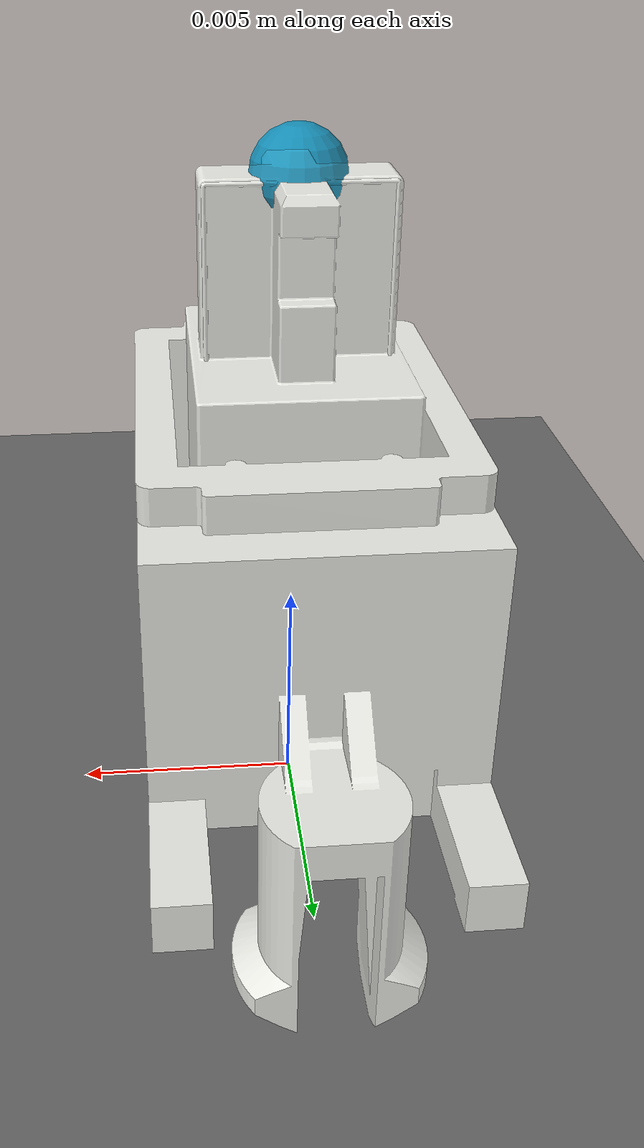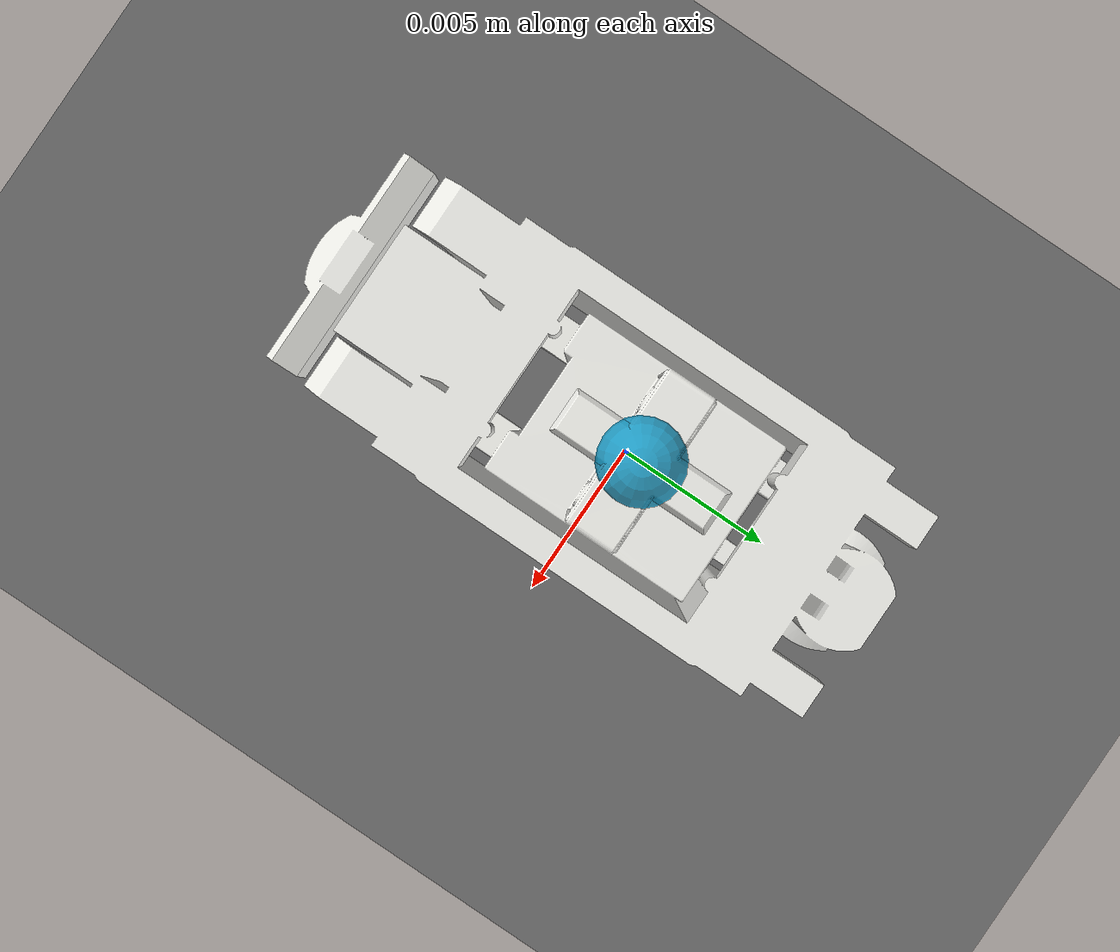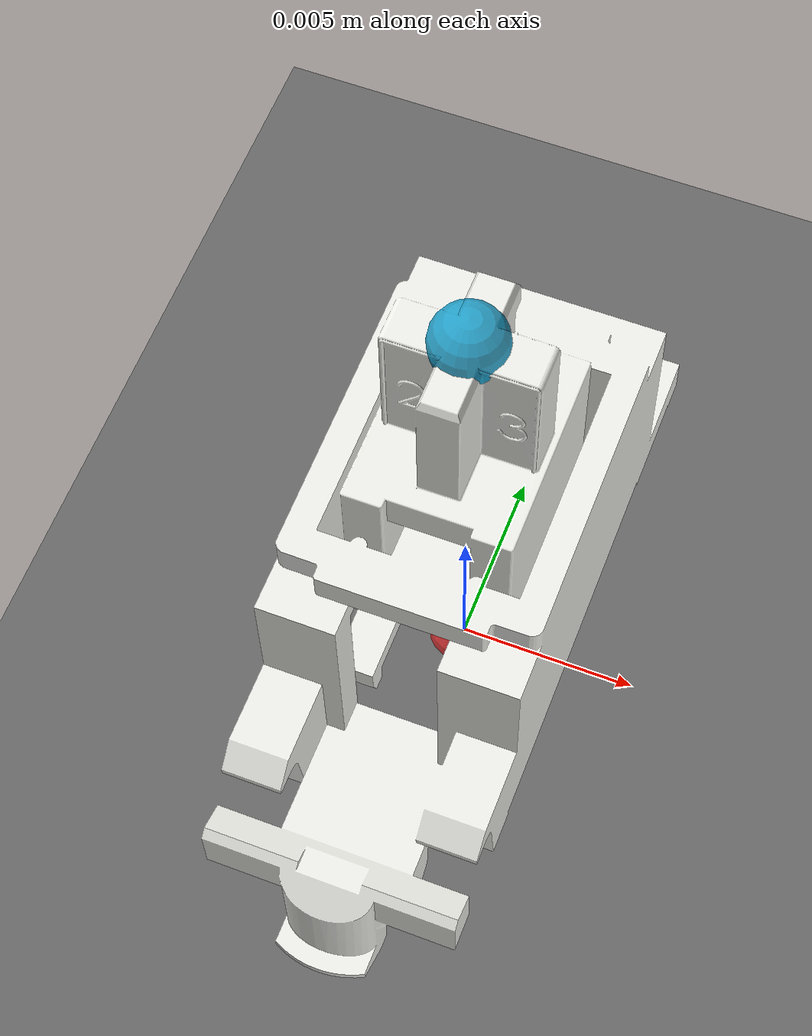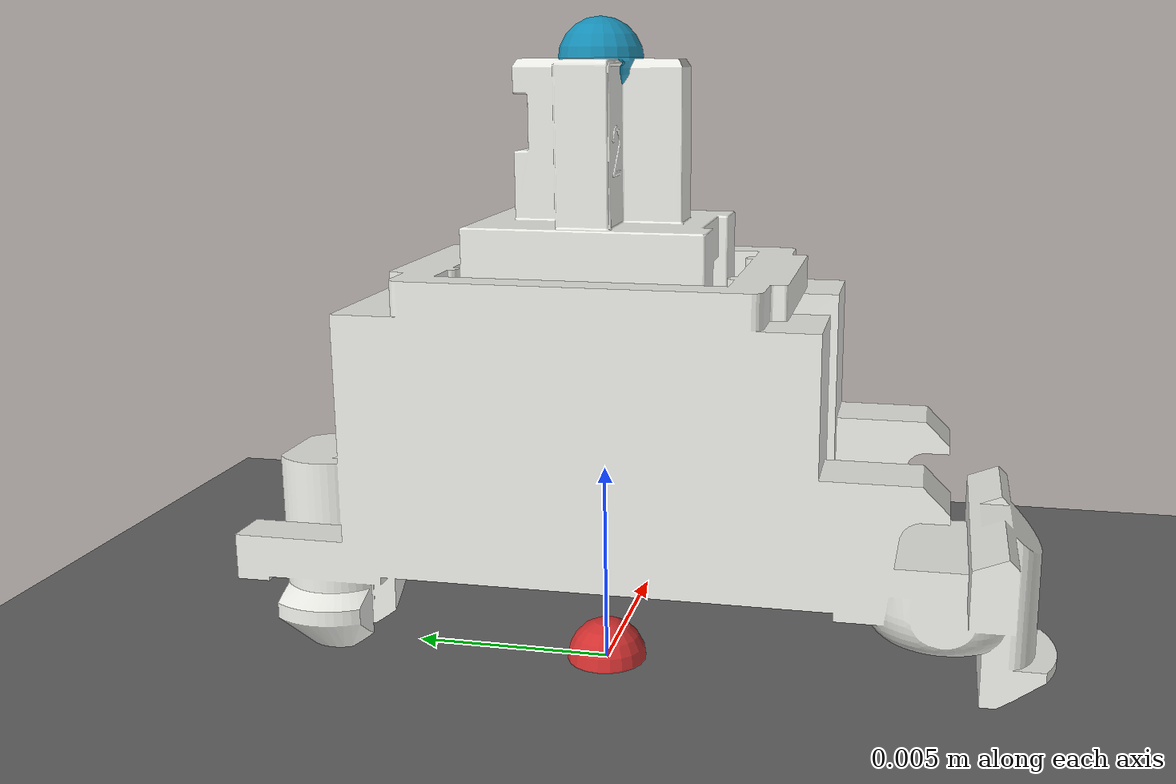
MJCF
<mujoco model="keyboard_stabilizer">

  <compiler angle="radian" autolimits="true"/>

  <option gravity="0 0 -9.81" timestep="0.002"/>

  <asset>
    <material name="stab_white"
              rgba="0.92 0.92 0.90 1"
              specular="0.3"
              shininess="0.4"
              reflectance="0.05"/>

    <material name="stab_collision"
              rgba="0.92 0.92 0.90 0.0"/>

    <mesh name="stabilizer_mesh"
          file="../../models/meshes/Stabilizer_Decimated.stl"
          scale="0.001 0.001 0.001"
          refpos="-23.958 0.000 -1.712"
          refquat="0.7071 -0.7071 0 0"/>

  </asset>

  <worldbody>

    <!-- Static ground plane -->
    <geom name="ground" type="plane" size="1 1 0.1"
          pos="0 0 0"
          friction="0.8 0.005 0.0001"
          rgba="0.4 0.4 0.4 1"/>

    <body name="stabilizer" pos="0 0 0">

      <inertial pos="0 0 0.0074"
                mass="0.003"
                diaginertia="8.0e-8 2.5e-8 7.0e-8"/>

      <freejoint name="stabilizer_free"/>

      <geom name="stabilizer_visual"
            type="mesh"
            mesh="stabilizer_mesh"
            pos="-0.047852 0.0017 0.00650"
            material="stab_white"
            rgba="0.92 0.92 0.90 1"
            contype="0"
            conaffinity="0"/>

      <geom name="stabilizer_col"
            type="box"
            size="0.0034 0.007425 0.0096"
            pos="0 0 0.0096"
            material="stab_collision"
            density="1050"
            friction="0.6 0.005 0.0001"
            condim="4"
            priority="1"/>

      <!-- ══════════════════════════════════════════════════════════════
           REGISTRATION SITES
           ══════════════════════════════════════════════════════════════ -->

      <!-- Bottom face center — insertion target point -->
      <!-- Robot aligns this to PCB stabilizer hole site -->
      <site name="insertion_point"
            type="sphere"
            size="0.001"
            pos="0 0 0"
            rgba="1 0.2 0.2 0.8"/>

      <!-- Top face center — vacuum/finger grasp point -->
      <site name="grasp_top"
            type="sphere"
            size="0.001"
            pos="0 0 0.0148"
            rgba="0 0.6 0.8 0.8"/>

      <!-- Housing center reference -->
      <site name="stab_center"
            type="sphere"
            size="0.001"
            pos="0 0 0.0074"
            rgba="1 1 0 0.4"/>

      <!-- Wire attachment point — center of housing side face -->
      <!-- Wire runs parallel to X axis connecting two housings -->
      <site name="wire_attach"
            type="sphere"
            size="0.001"
            pos="0 0 0.005"
            rgba="0.8 0.4 0 0.8"/>

    </body>

  </worldbody>

</mujoco>
